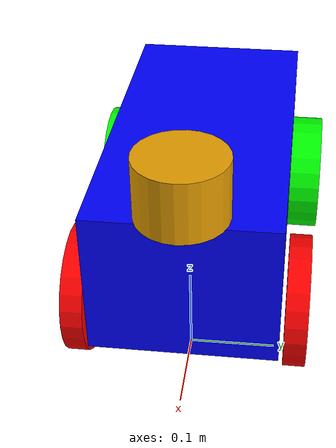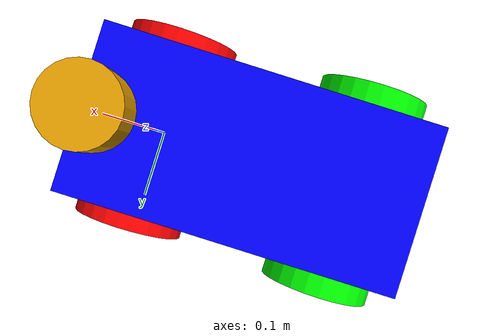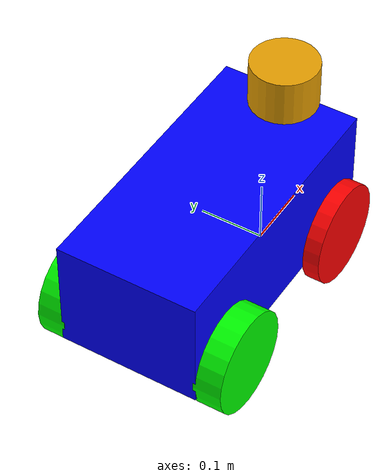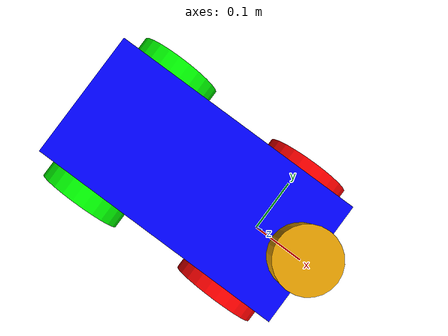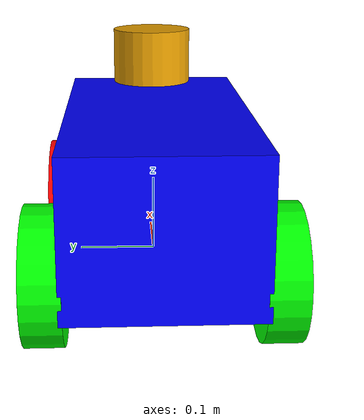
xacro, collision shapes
<?xml version="1.0"?>
<robot xmlns:xacro="http://www.ros.org/wiki/xacro" name="juggernaut">
  <!-- Define robot constants -->

  <!-- New Values-->
  <xacro:property name="body_mass" value="9.470"/> <!-- in Kg-->
  <xacro:property name="base_off_ground" value="0.0508"/> <!-- 2.0 inches / -->
  <xacro:property name="base_width" value="0.2145665"/> <!-- 8.4475 inches (chassis only; total width incl. wheels = 16 in / 0.4064 m)-->
  <xacro:property name="base_length" value="0.4318"/> <!-- 17 inches-->
  <xacro:property name="base_height" value="0.174625"/> <!-- 6.875 inches-->
  <xacro:property name="pool_noodle_radius" value="0.047625"/> <!-- 1.875 inches-->

  <xacro:property name="castor_wheel_width" value="0.04305"/> <!-- 2.26-inch STL depth; old value 0.0574 -->

  <xacro:property name="wheel_radius" value="0.0762"/> <!-- 3 inches-->
  <xacro:property name="wheel_width" value="0.0254"/><!-- 1 inches-->
  <xacro:property name="wheel_ygap" value="0.0174625"/><!-- 0.6875 inches-->
  <xacro:property name="wheel_zoff" value="-0.0619125"/> <!-- -2.4375 inches-->
  <xacro:property name="drive_wheel_xoff" value="0.0"/><!-- 0 inches-->
  <xacro:property name="rear_wheel_xoff" value="0.2794"/><!-- 11 inches-->
  <xacro:property name="castor_wheel_radius" value="0.0762"/> <!-- 3.0inches-->
  <xacro:property name="sensor_xoff_from_AR" value="0.0568325"/> <!-- 2.2375 inches-->
  <xacro:property name="Lidar_base_height_from_AR" value="0.149225"/> <!-- 5.875 inches-->
  <xacro:property name="imu_height_from_AR" value="0.0333375"/> <!-- 1.3125 inches-->
  <xacro:property name="AR_from_front" value="0.0771525"/> <!-- 3.0375 inches-->

  <xacro:property name="camera_screw_zoff" value="-0.0385"/>
  <xacro:property name="camera_screw_xoff" value="-0.007"/>

  <!-- old values defined as per the actual measurements -->
  <xacro:property name="lidar_radius" value="0.0516"/>
  <xacro:property name="lidar_length" value="0.0717"/>
  <xacro:property name="imu_length" value="0.03"/>
  <xacro:property name="imu_width" value="0.03"/>
  <xacro:property name="imu_height" value="0.02"/>
  <xacro:property name="hesai_centroid_y" value="-0.0298"/>
  <xacro:property name="hesai_centroid_z" value="0.0504"/>

  <xacro:arg name="use_nominal_extrinsics" default="true" />
  <!-- sim:=true (pass via `xacro robot.urdf.xacro sim:=true`) includes all Gazebo plugins/tags -->
  <xacro:arg name="sim" default="false" />
  <xacro:include filename="lidar.urdf.xacro" />
  <xacro:include filename="imu.urdf.xacro" />

  <xacro:lidar_3d_v1 parent="base_link" lidar_radius="${lidar_radius}" lidar_length="${lidar_length}">
    <origin xyz="${sensor_xoff_from_AR} 0 ${Lidar_base_height_from_AR}" rpy="0 0 0" />
  </xacro:lidar_3d_v1>

  <xacro:imu_v1 parent="base_link" imu_length="${imu_length}" imu_width="${imu_width}" imu_height="${imu_height}">
    <origin xyz="${sensor_xoff_from_AR} 0 ${imu_height_from_AR}" rpy="0 0 0" />
  </xacro:imu_v1>

  <material name="transparent_blue">
    <color rgba="0.0 0.0 1.0 0.75"/>
  </material>
  <material name="blue">
    <color rgba="0.0 0.0 1.0 1.0"/>
  </material>
  <material name="red">
    <color rgba="1.0 0.0 0.0 1.0"/>
  </material>
  <material name="green">
    <color rgba="0.0 1.0 0.0 1.0"/>
  </material>
  <material name="Gray">
    <color rgba="0.5 0.5 0.5 1.0"/>
  </material>

  <!-- Wheel xacro -->
  <xacro:macro name="wheel" params="prefix x_reflect y_reflect wheel_xoff joint_type">
    <link name="${prefix}_link">
      <visual>
        <origin xyz="0 0 0" rpy="${pi/2} 0 0"/>
        <geometry>
            <cylinder radius="${wheel_radius}" length="${wheel_width}"/>
        </geometry>
        <material name="red"/>
      </visual>
      <inertial>
        <origin xyz="0 0 0" rpy="0 0 0"/>
        <mass value="0.6"/>
        <!-- solid cylinder around local Y (since we rotated the cylinder) -->
        <inertia ixx="0.0012" ixy="0" ixz="0" iyy="0.0010" iyz="0" izz="0.0012"/>
      </inertial>    <!-- ADD: collision matches visual -->
      <collision>
        <origin xyz="0 0 0" rpy="${pi/2} 0 0"/>
        <geometry>
          <cylinder radius="${wheel_radius}" length="${wheel_width}"/>
        </geometry>
        <!-- optional: stiffer contact so they don't sink -->
        <surface>
          <contact>
            <ode>
              <kp>1e6</kp>
              <kd>1.0</kd>
              <max_vel>0.1</max_vel>
              <min_depth>0.001</min_depth>
            </ode>
          </contact>
          <friction>
            <ode>
              <mu>1.0</mu>
              <mu2>1.0</mu2>
            </ode>
          </friction>
        </surface>
      </collision>
    </link>

    <xacro:if value="$(arg sim)">
      <gazebo reference="${prefix}_link">
          <material>Gazebo/Red</material>
          <mu1>1.5</mu1>
          <mu2>1.5</mu2>
          <kp>1e6</kp>
          <kd>1.0</kd>
      </gazebo>
    </xacro:if>

    <joint name="${prefix}_joint" type="${joint_type}">
      <parent link="base_link"/>
      <child link="${prefix}_link"/>
      <origin xyz="${x_reflect*wheel_xoff} ${y_reflect*(base_width/2+wheel_ygap)} 0.0" rpy="0 0 0"/>
      <axis xyz="0 1 0"/>
      <limit effort="20.0" velocity="10.0"/>
    </joint>
  </xacro:macro>

  <xacro:macro name="rear_caster" params="prefix x_reflect y_reflect wheel_xoff joint_type">
    <link name="${prefix}_link">
      <visual>
        <origin xyz="-0.07000435725  0.138784527 -0.11703689025" rpy="${pi/2} 0 0"/>
        <geometry>
          <mesh filename="package://robot_description/urdf/meshes/caster_wheel.stl"
                scale="0.01905 0.01905 0.01905"/>
        </geometry>
        <material name="green"/>
      </visual>

      <inertial>
        <origin xyz="0 0 0" rpy="0 0 0"/>
        <mass value="0.6"/>
        <inertia ixx="0.0012" ixy="0" ixz="0"
                 iyy="0.0010" iyz="0" izz="0.0012"/>
      </inertial>

      <!-- Simple cylindrical collision for the omni wheel.
           The roller effect is represented by anisotropic friction below. -->
      <collision>
        <origin xyz="0 0 0" rpy="${pi/2} 0 0"/>
        <geometry>
          <cylinder radius="${castor_wheel_radius}" length="${castor_wheel_width}"/>
        </geometry>
      </collision>
    </link>

    <!-- Fixed wheel orientation: only the wheel spins about its axle (Y). -->
    <joint name="${prefix}_joint" type="${joint_type}">
      <parent link="base_link"/>
      <child link="${prefix}_link"/>
      <origin xyz="${x_reflect*wheel_xoff} ${y_reflect*(base_width/2+wheel_ygap)} 0.0" rpy="0 0 0"/>
      <axis xyz="0 1 0"/>
      <dynamics damping="0.02" friction="0.0"/>
      <limit effort="20.0" velocity="20.0"/>
    </joint>

    <!-- Omni-wheel approximation:
         fdir1 = chassis/wheel X direction
         mu1   = normal rolling-direction traction
         mu2   = very low lateral resistance along Y, emulating free rollers -->
    <xacro:if value="$(arg sim)">
      <gazebo reference="${prefix}_link">
        <material>Gazebo/Green</material>
        <mu1>1.0</mu1>
        <mu2>0.02</mu2>
        <fdir1>1 0 0</fdir1>
        <kp>1e6</kp>
        <kd>1.0</kd>
        <slip1>0.0</slip1>
        <slip2>1.0</slip2>
      </gazebo>
    </xacro:if>
  </xacro:macro>

  <link name="base_footprint"/>

  <joint name="base_footprint_to_base_link" type="fixed">
    <parent link="base_footprint"/>
    <child link="base_link"/>
    <origin xyz="0 0 ${wheel_radius}" rpy="0 0 0"/>
  </joint>

  <link name="base_link">
      <inertial>
      <origin xyz="${AR_from_front-base_length/2} 0 ${base_height/2+base_off_ground-wheel_radius}" rpy="0 0 0"/> <!-- change based on TF -->
      <mass value="${body_mass}"/>
      <inertia ixx="${body_mass * (base_width**2 + base_height**2)/12.0 + body_mass * (base_height/2+base_off_ground-wheel_radius)**2}" ixy="0.0" ixz="0.0"
               iyy="${body_mass * (base_length**2 + base_height**2)/12.0 + body_mass * ((AR_from_front-base_length/2)**2 + (base_height/2+base_off_ground-wheel_radius)**2)}" iyz="0.0"
               izz="${body_mass * (base_length**2 + base_width**2)/12.0 + body_mass * (AR_from_front-base_length/2)**2}"/>
    </inertial>
    <visual>
      <origin xyz="${AR_from_front-base_length/2} 0 ${base_height/2+base_off_ground-wheel_radius}" rpy="0 0 0"/>
      <geometry>
        <box size="${base_length} ${base_width} ${base_height}"/>
      </geometry>
      <material name="blue"/>
    </visual>
    <collision>
      <origin xyz="${AR_from_front-base_length/2} 0 ${base_height/2+base_off_ground-wheel_radius}" rpy="0 0 0"/> <!-- change based on TF -->
      <geometry>
        <box size="${base_length} ${base_width} ${base_height}"/>
      </geometry>
    </collision>
  </link>
  <xacro:wheel prefix="drivewhl_l" x_reflect="1" y_reflect="1" wheel_xoff="${drive_wheel_xoff}" joint_type="continuous"/>
  <xacro:wheel prefix="drivewhl_r" x_reflect="1" y_reflect="-1" wheel_xoff="${drive_wheel_xoff}" joint_type="continuous"/>
  <xacro:rear_caster prefix="rearwhl_l" x_reflect="-1" y_reflect="1" wheel_xoff="${rear_wheel_xoff}" joint_type="continuous"/>
  <xacro:rear_caster prefix="rearwhl_r" x_reflect="-1" y_reflect="-1" wheel_xoff="${rear_wheel_xoff}" joint_type="continuous"/>
  <xacro:if value="$(arg sim)">
    <gazebo>
      <plugin filename="gz-sim-diff-drive-system" name="gz::sim::systems::DiffDrive">
          <left_joint>drivewhl_l_joint</left_joint>
          <right_joint>drivewhl_r_joint</right_joint>
          <wheel_separation>${base_width+2*wheel_ygap}</wheel_separation> <!-- Adjust to your robot's width (meters) -->
          <wheel_radius>${wheel_radius}</wheel_radius>     <!-- Adjust to your wheel radius (meters) -->
          <topic>cmd_vel</topic>
          <odom_topic>/odom_wheel</odom_topic>   <!-- wheel encoder odom — drifts on ramp/slip; absolute topic so it bridges to ROS 2 -->
          <odom_frame>odom</odom_frame>
          <robot_base_frame>base_link</robot_base_frame>
          <tf_topic>/tf</tf_topic>
          <robot_param_node>/robot_state_publisher</robot_param_node>
      </plugin>
    </gazebo>
    <gazebo>
      <plugin filename="gz-sim-odometry-publisher-system" name="gz::sim::systems::OdometryPublisher">
          <odom_frame>odom</odom_frame>
          <robot_base_frame>base_link</robot_base_frame>
          <odom_topic>/odom</odom_topic>
          <tf_topic>/tf</tf_topic>
          <odom_publish_frequency>50</odom_publish_frequency>
      </plugin>
    </gazebo>
    <gazebo>
      <plugin filename="gz-sim-joint-state-publisher-system" name="gz::sim::systems::JointStatePublisher">
          <topic>joint_states</topic>
          <joint_name>drivewhl_l_joint</joint_name>
          <joint_name>drivewhl_r_joint</joint_name>
          <joint_name>rearwhl_l_joint</joint_name>
          <joint_name>rearwhl_r_joint</joint_name>
      </plugin>
    </gazebo>
     <!-- INSERT GROUND TRUTH POSE PUBLISHER HERE -->
    <gazebo>
      <plugin filename="libignition-gazebo-pose-publisher-system.so"
            name="ignition::gazebo::systems::PosePublisher">
        <publish_link_pose>false</publish_link_pose>
        <publish_visual_pose>false</publish_visual_pose>
        <publish_nested_model_pose>true</publish_nested_model_pose>
        <use_pose_vector_msg>true</use_pose_vector_msg>
        <static_publisher>false</static_publisher>
        <publish_model_pose>true</publish_model_pose>
      </plugin>
    </gazebo>
  </xacro:if>

</robot>

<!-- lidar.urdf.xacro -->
<robot xmlns:xacro="http://www.ros.org/wiki/xacro" name="lidar_3d_v1">

    <xacro:macro name="lidar_3d_v1" params="parent lidar_radius lidar_length *origin">

    <joint name="lidar_joint" type="fixed">
      <xacro:insert_block name="origin" />
      <parent link="${parent}"/>
      <child link="hesai_lidar"/>
    </joint>

    <link name="hesai_lidar">
      <inertial>
        <origin xyz="0 0 0" rpy="0 0 0"/>
        <mass value="0.83"/>
        <inertia
          ixx="0.0009080594249999999" ixy="0.0" ixz="0.0"
          iyy="0.0009080594249999999" iyz="0.0"
          izz="0.0011049624"/>
      </inertial>

      <visual>
        <origin xyz="0 0 0" rpy="0 0 0"/>
        <geometry>
          <mesh filename="package://robot_description/urdf/meshes/lidar_3d_v1.dae"/>
        </geometry>
      </visual>

      <collision name="collision">
        <origin xyz="0 0 0.03585" rpy="0 0 0"/>
        <geometry>
          <cylinder radius="${lidar_radius}" length="${lidar_length}"/>
        </geometry>
      </collision>
    </link>

    <xacro:if value="$(arg sim)">
    <gazebo reference="hesai_lidar">
      <sensor type="gpu_lidar" name="gpu_lidar">
        <pose>0 0 0 0 0 0</pose>
        <always_on>true</always_on>
        <update_rate>10</update_rate>
        <visualize>false</visualize>
        <topic>lidar</topic>
        <ignition_frame_id>hesai_lidar</ignition_frame_id>
        <ray>
          <scan>
            <horizontal>
              <samples>640</samples>
              <resolution>1</resolution>
              <min_angle>-1.5708</min_angle>
              <max_angle>1.5708</max_angle>
            </horizontal>
            <vertical>
              <samples>32</samples>
              <resolution>1</resolution>
              <min_angle>-0.2618</min_angle>
              <max_angle>0.2618</max_angle>
            </vertical>
          </scan>
          <range>
            <min>0.08</min>
            <max>30.0</max>
            <resolution>0.01</resolution>
          </range>
        </ray>
      </sensor>
    </gazebo>
    </xacro:if>

  </xacro:macro>
</robot>

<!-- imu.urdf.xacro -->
<robot xmlns:xacro="http://www.ros.org/wiki/xacro" name="imu_v1">

  <xacro:macro name="imu_v1" params="parent imu_length imu_width imu_height *origin">

    <joint name="imu_joint" type="fixed">
      <xacro:insert_block name="origin" />
      <parent link="${parent}"/>
      <child link="imu_link"/>
    </joint>

    <link name="imu_link">
      <inertial>
        <origin xyz="0 0 0" rpy="0 0 0"/>
        <mass value="0.05"/>
        <inertia ixx="1e-05" ixy="0.0" ixz="0.0" iyy="1e-05" iyz="0.0" izz="2e-05"/>
      </inertial>

      <visual>
        <origin xyz="0 0 0" rpy="0 0 0"/>
        <geometry>
          <box size="${imu_length} ${imu_width} ${imu_height}"/>
        </geometry>
        <material name="Gray"/>
      </visual>

      <collision>
        <origin xyz="0 0 0" rpy="0 0 0"/>
        <geometry>
          <box size="${imu_length} ${imu_width} ${imu_height}"/>
        </geometry>
      </collision>
    </link>
    <xacro:if value="$(arg sim)">
      <gazebo reference="imu_link">
        <sensor type="imu" name="imu_sensor">
          <always_on>1</always_on>
          <update_rate>100</update_rate>
          <visualize>true</visualize>
          <topic>imu</topic>
          <ignition_frame_id>imu_link</ignition_frame_id>
          <plugin filename="ignition-gazebo-imu-system" name="ignition::gazebo::systems::Imu">
          </plugin>
        </sensor>
      </gazebo>
    </xacro:if>
  </xacro:macro>
</robot>
